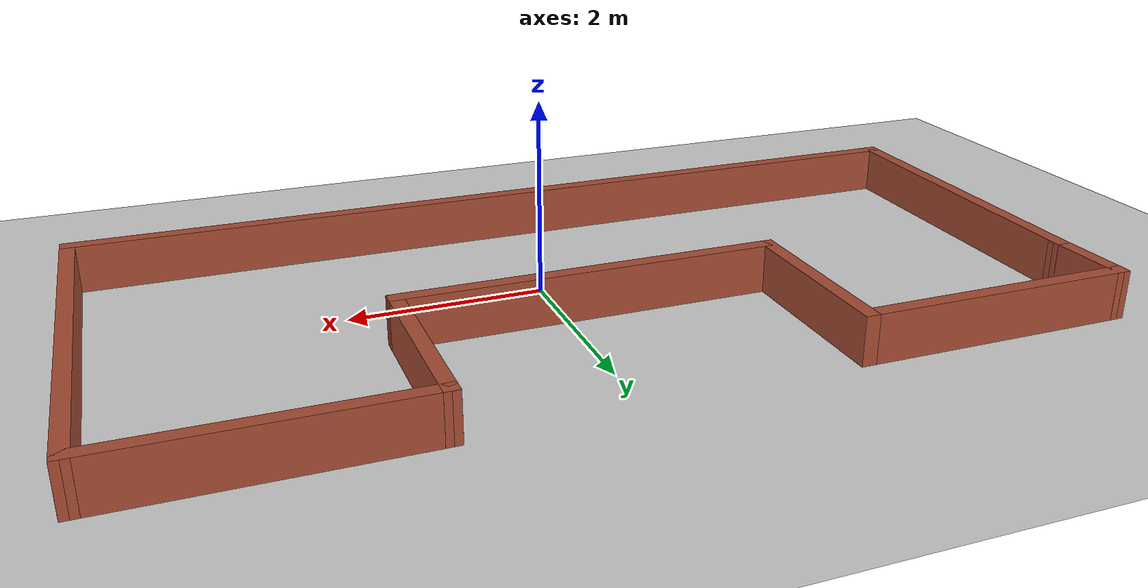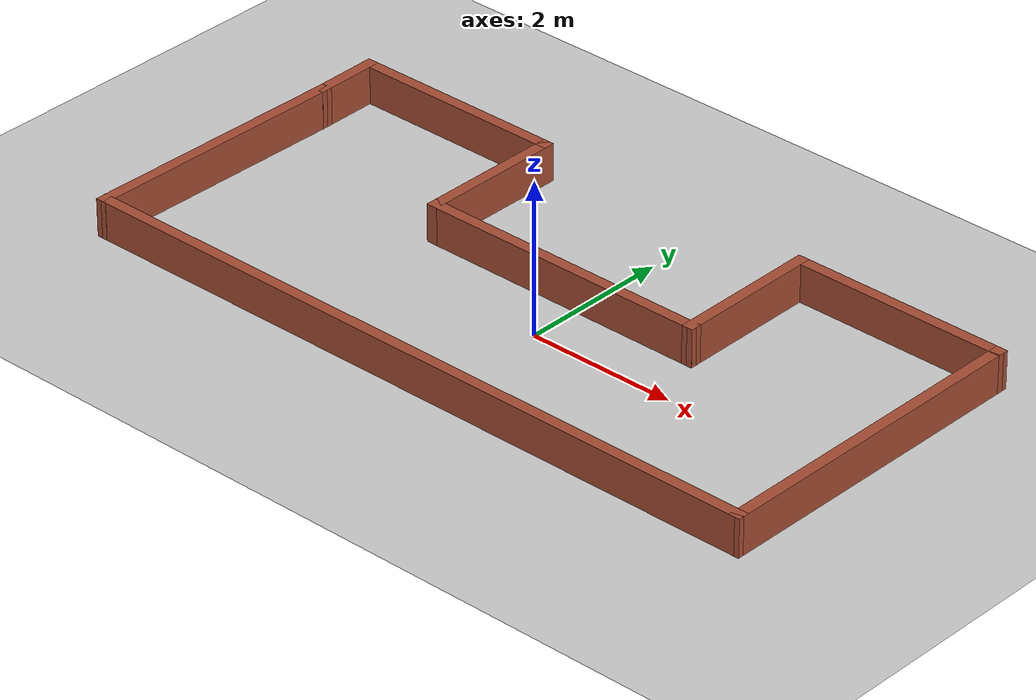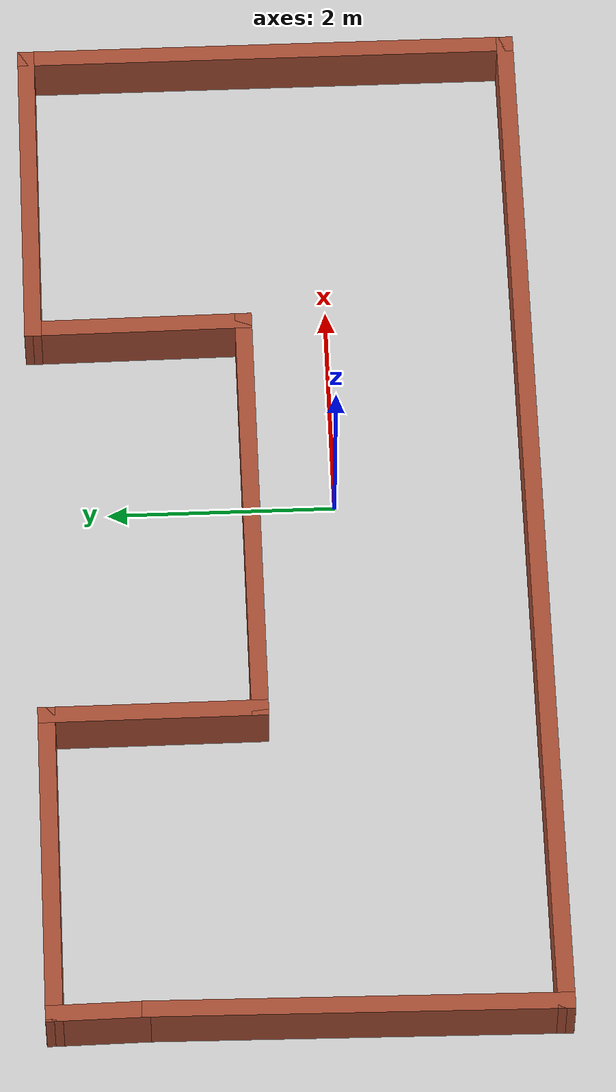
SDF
<sdf version="1.6">
 <world name="default">
  <light name="sun" type="directional">
   <pose>0 0 10 0 -0 0</pose>
   <diffuse>0.8 0.8 0.8 1</diffuse>
   <specular>0.1 0.1 0.1 1</specular>
   <attenuation>
    <range>1000</range>
    <constant>0.9</constant>
    <linear>0.01</linear>
    <quadratic>0.001</quadratic>
   </attenuation>
   <direction>-0.5 0.5 -1</direction>
  </light>
  <model name="ground_plane">
   <static>1</static>
   <link name="link">
    <collision name="collision">
     <geometry><plane><normal>0 0 1</normal><size>100 100</size></plane></geometry>
     <surface><friction><ode><mu>100</mu><mu2>50</mu2></ode></friction></surface>
    </collision>
    <visual name="visual">
     <cast_shadows>0</cast_shadows>
     <geometry><plane><normal>0 0 1</normal><size>100 100</size></plane></geometry>
     <material>
      <script><uri>file://media/materials/scripts/gazebo.material</uri><name>Gazebo/Grey</name></script>
     </material>
    </visual>
   </link>
  </model>
  <gravity>0 0 -9.8</gravity>
  <magnetic_field>6e-06 2.3e-05 -4.2e-05</magnetic_field>
  <atmosphere type="adiabatic"/>
  <physics name="default_physics" default="0" type="ode">
   <max_step_size>0.001</max_step_size>
   <real_time_factor>1</real_time_factor>
   <real_time_update_rate>1000</real_time_update_rate>
  </physics>
  <scene><ambient>0.4 0.4 0.4 1</ambient><background>0.7 0.7 0.7 1</background><shadows>1</shadows></scene>
  <spherical_coordinates>
   <surface_model>EARTH_WGS84</surface_model>
   <latitude_deg>0</latitude_deg>
   <longitude_deg>0</longitude_deg>
   <elevation>0</elevation>
   <heading_deg>0</heading_deg>
  </spherical_coordinates>
  <model name="u2">
   <pose>-0.28964 0.438285 0 0 -0 0</pose>
   <link name="Wall_0">
    <collision name="Wall_0_Collision">
     <geometry><box><size>0.960062 0.15 0.5</size></box></geometry>
     <pose>0 0 0.25 0 -0 0</pose>
    </collision>
    <visual name="Wall_0_Visual">
     <pose>0 0 0.25 0 -0 0</pose>
     <geometry><box><size>0.960062 0.15 0.5</size></box></geometry>
     <material>
      <script><uri>file://media/materials/scripts/gazebo.material</uri><name>Gazebo/Bricks</name></script>
      <ambient>0.996078 0.47451 0.0196078 1</ambient>
     </material>
    </visual>
    <pose>-4.74445 1.73989 0 0 -0 1.58314</pose>
   </link>
   <link name="Wall_1">
    <collision name="Wall_1_Collision">
     <geometry><box><size>2.98 0.15 0.5</size></box></geometry>
     <pose>0 0 0.25 0 -0 0</pose>
    </collision>
    <visual name="Wall_1_Visual">
     <pose>0 0 0.25 0 -0 0</pose>
     <geometry><box><size>2.98 0.15 0.5</size></box></geometry>
     <material>
      <script><uri>file://media/materials/scripts/gazebo.material</uri><name>Gazebo/Bricks</name></script>
      <ambient>0.996078 0.47451 0.0196078 1</ambient>
     </material>
    </visual>
    <pose>-3.33445 2.14489 0 0 -0 0</pose>
   </link>
   <link name="Wall_2">
    <collision name="Wall_2_Collision">
     <geometry><box><size>1.99003 0.15 0.5</size></box></geometry>
     <pose>0 0 0.25 0 -0 0</pose>
    </collision>
    <visual name="Wall_2_Visual">
     <pose>0 0 0.25 0 -0 0</pose>
     <geometry><box><size>1.99003 0.15 0.5</size></box></geometry>
     <material>
      <script><uri>file://media/materials/scripts/gazebo.material</uri><name>Gazebo/Bricks</name></script>
      <ambient>0.996078 0.47451 0.0196078 1</ambient>
     </material>
    </visual>
    <pose>-1.91945 1.22489 0 0 0 -1.5708</pose>
   </link>
   <link name="Wall_3">
    <collision name="Wall_3_Collision">
     <geometry><box><size>4.03 0.15 0.5</size></box></geometry>
     <pose>0 0 0.25 0 -0 0</pose>
    </collision>
    <visual name="Wall_3_Visual">
     <pose>0 0 0.25 0 -0 0</pose>
     <geometry><box><size>4.03 0.15 0.5</size></box></geometry>
     <material>
      <script><uri>file://media/materials/scripts/gazebo.material</uri><name>Gazebo/Bricks</name></script>
      <ambient>0.996078 0.47451 0.0196078 1</ambient>
     </material>
    </visual>
    <pose>0.020551 0.30489 0 0 -0 0</pose>
   </link>
   <link name="Wall_4">
    <collision name="Wall_4_Collision">
     <geometry><box><size>2.02 0.15 0.5</size></box></geometry>
     <pose>0 0 0.25 0 -0 0</pose>
    </collision>
    <visual name="Wall_4_Visual">
     <pose>0 0 0.25 0 -0 0</pose>
     <geometry><box><size>2.02 0.15 0.5</size></box></geometry>
     <material>
      <script><uri>file://media/materials/scripts/gazebo.material</uri><name>Gazebo/Bricks</name></script>
      <ambient>0.996078 0.47451 0.0196078 1</ambient>
     </material>
    </visual>
    <pose>1.95555 1.23989 0 0 -0 1.57614</pose>
   </link>
   <link name="Wall_5">
    <collision name="Wall_5_Collision">
     <geometry><box><size>3 0.15 0.5</size></box></geometry>
     <pose>0 0 0.25 0 -0 0</pose>
    </collision>
    <visual name="Wall_5_Visual">
     <pose>0 0 0.25 0 -0 0</pose>
     <geometry><box><size>3 0.15 0.5</size></box></geometry>
     <material>
      <script><uri>file://media/materials/scripts/gazebo.material</uri><name>Gazebo/Bricks</name></script>
      <ambient>0.996078 0.47451 0.0196078 1</ambient>
     </material>
    </visual>
    <pose>3.37555 2.17489 0 0 -0 0</pose>
   </link>
   <link name="Wall_6">
    <collision name="Wall_6_Collision">
     <geometry><box><size>4.5 0.15 0.5</size></box></geometry>
     <pose>0 0 0.25 0 -0 0</pose>
    </collision>
    <visual name="Wall_6_Visual">
     <pose>0 0 0.25 0 -0 0</pose>
     <geometry><box><size>4.5 0.15 0.5</size></box></geometry>
     <material>
      <script><uri>file://media/materials/scripts/gazebo.material</uri><name>Gazebo/Bricks</name></script>
      <ambient>1 0.764706 0.305882 1</ambient>
     </material>
    </visual>
    <pose>4.79555 -0.00011 0 0 0 -1.57309</pose>
   </link>
   <link name="Wall_7">
    <collision name="Wall_7_Collision">
     <geometry><box><size>9.74001 0.15 0.5</size></box></geometry>
     <pose>0 0 0.25 0 -0 0</pose>
    </collision>
    <visual name="Wall_7_Visual">
     <pose>0 0 0.25 0 -0 0</pose>
     <geometry><box><size>9.74001 0.15 0.5</size></box></geometry>
     <material>
      <script><uri>file://media/materials/scripts/gazebo.material</uri><name>Gazebo/Bricks</name></script>
      <ambient>0.435294 0.796078 0.67451 1</ambient>
     </material>
    </visual>
    <pose>-0.004449 -2.17011 0 0 -0 3.14055</pose>
   </link>
   <link name="Wall_8">
    <collision name="Wall_8_Collision">
     <geometry><box><size>3.65051 0.15 0.5</size></box></geometry>
     <pose>0 0 0.25 0 -0 0</pose>
    </collision>
    <visual name="Wall_8_Visual">
     <pose>0 0 0.25 0 -0 0</pose>
     <geometry><box><size>3.65051 0.15 0.5</size></box></geometry>
     <material>
      <script><uri>file://media/materials/scripts/gazebo.material</uri><name>Gazebo/Bricks</name></script>
      <ambient>0.996078 0.47451 0.0196078 1</ambient>
     </material>
    </visual>
    <pose>-4.76945 -0.41511 0 0 -0 1.55366</pose>
   </link>
   <static>1</static>
  </model>
 </world>
</sdf>
